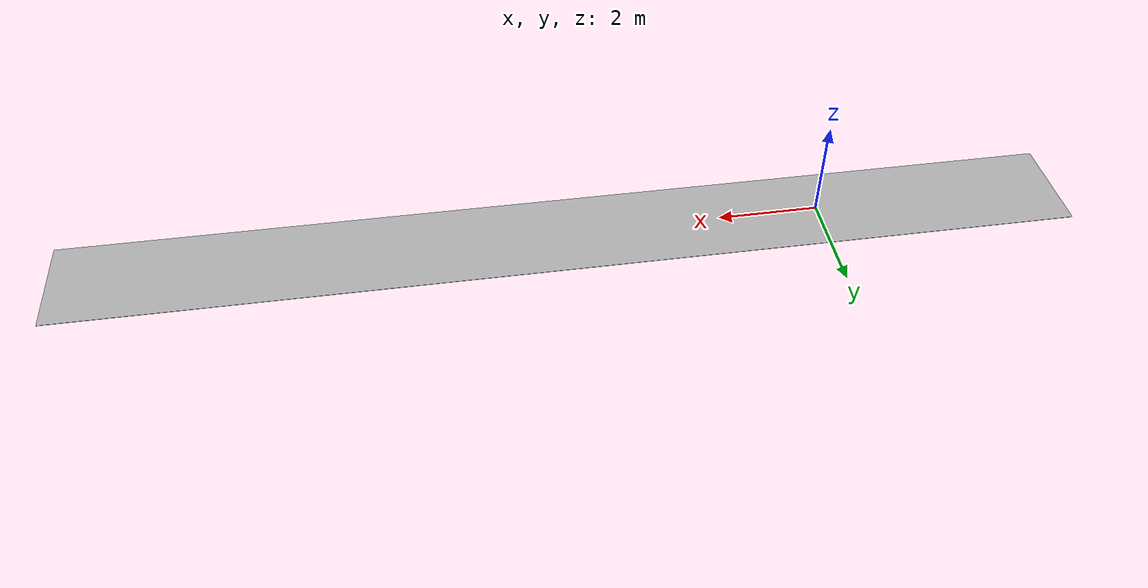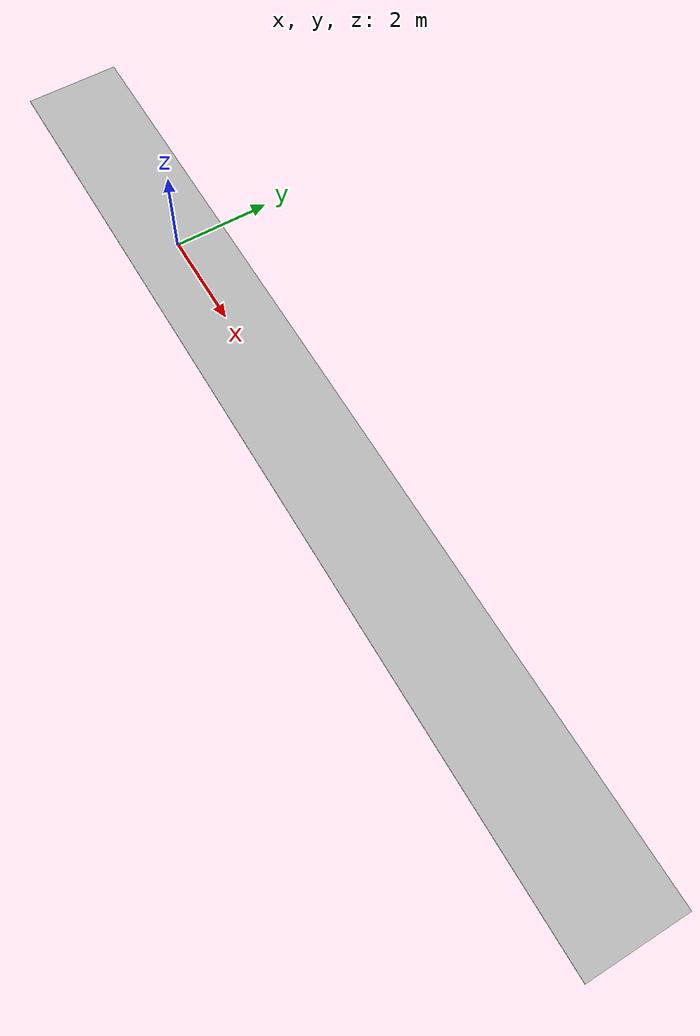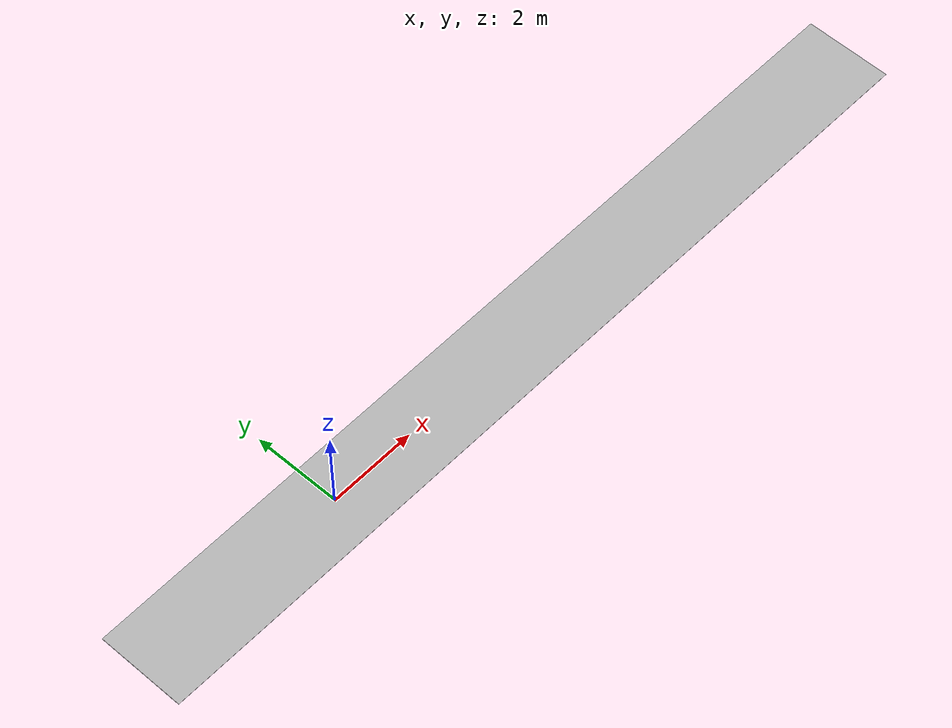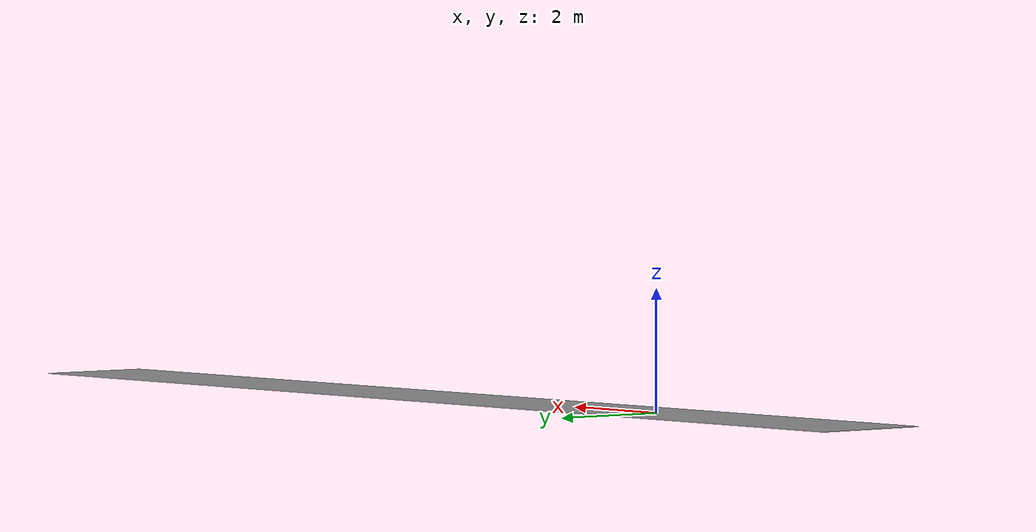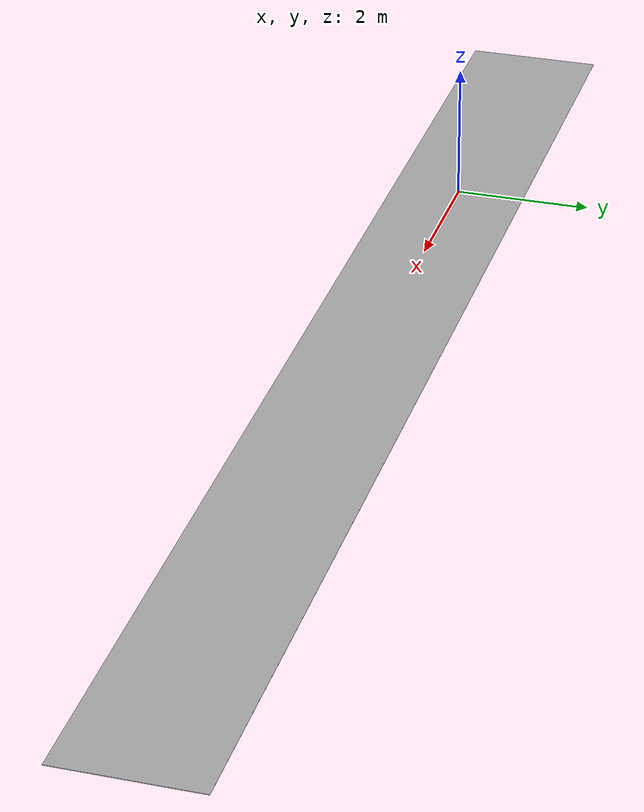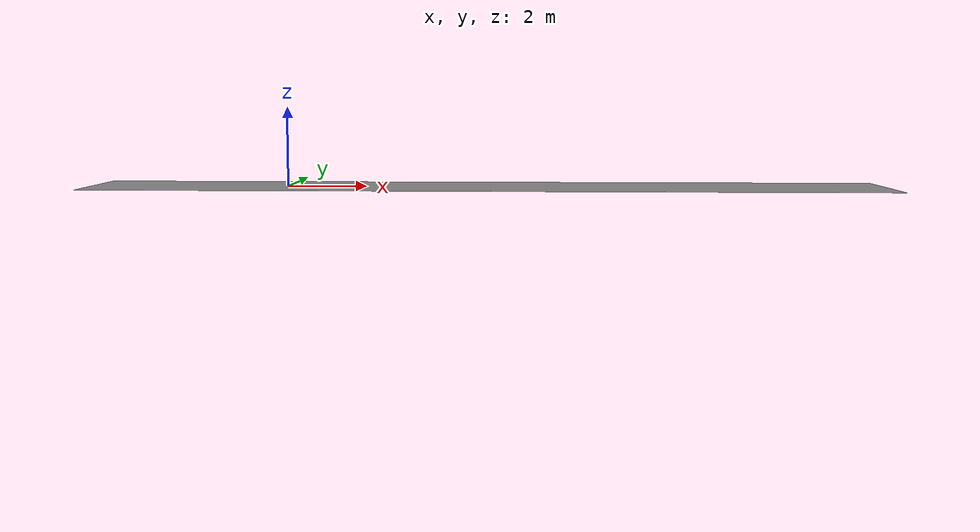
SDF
<?xml version='1.0'?>
<sdf version="1.4">
  <model name="hallway">
    <static>true</static>

    <link name="bot_wall">
      <pose>5 0 0 0 0 0</pose>
      <visual name="visual">
        <geometry>
          <box>
            <size>20 2.0 0.01</size>
          </box>
        </geometry>
        <material>
          <script>
            <uri>model://hallway/materials/scripts</uri>
            <name>feature_3</name>
          </script>
        </material>
      </visual>
      <collision name = "collision">
        <geometry>
        <box>
            <size>20 2.0 0.01</size>
          </box>
        </geometry>
      </collision>
    </link>

  </model>
</sdf>
